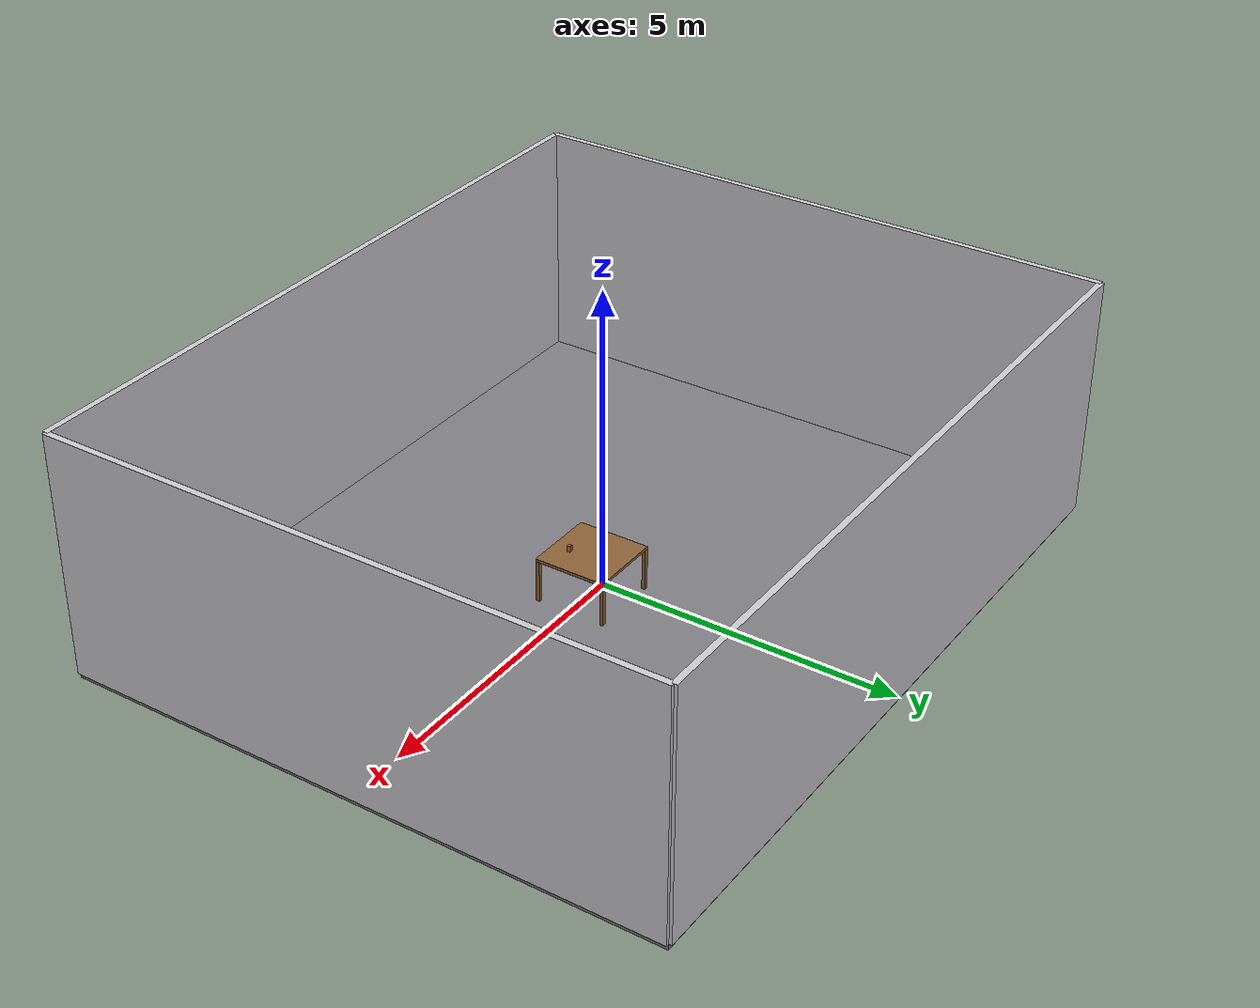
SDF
<?xml version="1.0" ?>
<sdf version="1.6">
  <world name="warehouse_box_test">
    <!-- ================= PHYSICS ================= -->
    <physics name="1ms" type="ignored">
      <max_step_size>0.001</max_step_size>
      <real_time_factor>1.0</real_time_factor>
    </physics>
    <gravity>0 0 -9.8</gravity>

    <!-- ================= SYSTEM PLUGINS ================= -->
    <plugin filename="gz-sim-physics-system"
            name="gz::sim::systems::Physics"/>
    <plugin filename="gz-sim-user-commands-system"
            name="gz::sim::systems::UserCommands"/>
    <plugin filename="gz-sim-scene-broadcaster-system"
            name="gz::sim::systems::SceneBroadcaster"/>
    <plugin filename="gz-sim-contact-system"
            name="gz::sim::systems::Contact"/>
    <plugin filename="gz-sim-sensors-system"
            name="gz::sim::systems::Sensors">
      <render_engine>ogre2</render_engine>
    </plugin>

    <!-- ================= LIGHTING ================= -->
    <light type="directional" name="sun">
      <cast_shadows>true</cast_shadows>
      <pose>0 0 10 0 0 0</pose>
      <diffuse>0.9 0.9 0.85 1</diffuse>
      <specular>0.3 0.3 0.3 1</specular>
      <attenuation>
        <range>1000</range><constant>0.9</constant>
        <linear>0.01</linear><quadratic>0.001</quadratic>
      </attenuation>
      <direction>-0.5 0.1 -0.9</direction>
    </light>
    <light type="point" name="ceiling_0">
      <pose>0 0 3.8 0 0 0</pose>
      <diffuse>0.6 0.6 0.6 1</diffuse><specular>0.1 0.1 0.1 1</specular>
      <attenuation><range>20</range><constant>0.5</constant>
        <linear>0.05</linear><quadratic>0.01</quadratic></attenuation>
      <cast_shadows>false</cast_shadows>
    </light>
    <light type="point" name="ceiling_1">
      <pose>3 3 3.8 0 0 0</pose>
      <diffuse>0.6 0.6 0.6 1</diffuse><specular>0.1 0.1 0.1 1</specular>
      <attenuation><range>20</range><constant>0.5</constant>
        <linear>0.05</linear><quadratic>0.01</quadratic></attenuation>
      <cast_shadows>false</cast_shadows>
    </light>

    <!-- ================= WAREHOUSE SHELL ================= -->
    <!-- 12 x 10 m enclosed room, 4 m tall. Arm mounts on the table at origin. -->
    <model name="warehouse">
      <static>true</static>
      <!-- Floor -->
      <link name="floor">
        <collision name="c">
          <geometry><box><size>12 10 0.1</size></box></geometry>
          <pose>0 0 -0.05 0 0 0</pose>
        </collision>
        <visual name="v">
          <geometry><box><size>12 10 0.1</size></box></geometry>
          <pose>0 0 -0.05 0 0 0</pose>
          <material>
            <ambient>0.4 0.4 0.42 1</ambient>
            <diffuse>0.5 0.5 0.52 1</diffuse>
          </material>
        </visual>
      </link>
      <!-- +X wall -->
      <link name="wall_px">
        <collision name="c"><geometry><box><size>0.1 10 4</size></box></geometry>
          <pose>6 0 2 0 0 0</pose></collision>
        <visual name="v"><geometry><box><size>0.1 10 4</size></box></geometry>
          <pose>6 0 2 0 0 0</pose>
          <material><ambient>0.7 0.7 0.72 1</ambient><diffuse>0.8 0.8 0.82 1</diffuse></material></visual>
      </link>
      <!-- -X wall -->
      <link name="wall_nx">
        <collision name="c"><geometry><box><size>0.1 10 4</size></box></geometry>
          <pose>-6 0 2 0 0 0</pose></collision>
        <visual name="v"><geometry><box><size>0.1 10 4</size></box></geometry>
          <pose>-6 0 2 0 0 0</pose>
          <material><ambient>0.7 0.7 0.72 1</ambient><diffuse>0.8 0.8 0.82 1</diffuse></material></visual>
      </link>
      <!-- +Y wall -->
      <link name="wall_py">
        <collision name="c"><geometry><box><size>12 0.1 4</size></box></geometry>
          <pose>0 5 2 0 0 0</pose></collision>
        <visual name="v"><geometry><box><size>12 0.1 4</size></box></geometry>
          <pose>0 5 2 0 0 0</pose>
          <material><ambient>0.7 0.7 0.72 1</ambient><diffuse>0.8 0.8 0.82 1</diffuse></material></visual>
      </link>
      <!-- -Y wall -->
      <link name="wall_ny">
        <collision name="c"><geometry><box><size>12 0.1 4</size></box></geometry>
          <pose>0 -5 2 0 0 0</pose></collision>
        <visual name="v"><geometry><box><size>12 0.1 4</size></box></geometry>
          <pose>0 -5 2 0 0 0</pose>
          <material><ambient>0.7 0.7 0.72 1</ambient><diffuse>0.8 0.8 0.82 1</diffuse></material></visual>
      </link>
    </model>

    <!-- ================= TABLE ================= -->
    <model name="table">
      <static>true</static>
      <link name="top">
        <collision name="c">
          <geometry><box><size>1.2000 1.2000 0.0500</size></box></geometry>
          <pose>0.3000 0.0000 0.7250 0 0 0</pose>
        </collision>
        <visual name="v">
          <geometry><box><size>1.2000 1.2000 0.0500</size></box></geometry>
          <pose>0.3000 0.0000 0.7250 0 0 0</pose>
          <material>
            <ambient>0.55 0.38 0.22 1</ambient>
            <diffuse>0.55 0.38 0.22 1</diffuse>
          </material>
        </visual>
      </link>
      <link name="leg_0">
        <collision name="c">
          <geometry><box><size>0.0600 0.0600 0.7000</size></box></geometry>
          <pose>-0.2700 -0.5700 0.3500 0 0 0</pose>
        </collision>
        <visual name="v">
          <geometry><box><size>0.0600 0.0600 0.7000</size></box></geometry>
          <pose>-0.2700 -0.5700 0.3500 0 0 0</pose>
          <material>
            <ambient>0.55 0.38 0.22 1</ambient>
            <diffuse>0.55 0.38 0.22 1</diffuse>
          </material>
        </visual>
      </link>
      <link name="leg_1">
        <collision name="c">
          <geometry><box><size>0.0600 0.0600 0.7000</size></box></geometry>
          <pose>-0.2700 0.5700 0.3500 0 0 0</pose>
        </collision>
        <visual name="v">
          <geometry><box><size>0.0600 0.0600 0.7000</size></box></geometry>
          <pose>-0.2700 0.5700 0.3500 0 0 0</pose>
          <material>
            <ambient>0.55 0.38 0.22 1</ambient>
            <diffuse>0.55 0.38 0.22 1</diffuse>
          </material>
        </visual>
      </link>
      <link name="leg_2">
        <collision name="c">
          <geometry><box><size>0.0600 0.0600 0.7000</size></box></geometry>
          <pose>0.8700 -0.5700 0.3500 0 0 0</pose>
        </collision>
        <visual name="v">
          <geometry><box><size>0.0600 0.0600 0.7000</size></box></geometry>
          <pose>0.8700 -0.5700 0.3500 0 0 0</pose>
          <material>
            <ambient>0.55 0.38 0.22 1</ambient>
            <diffuse>0.55 0.38 0.22 1</diffuse>
          </material>
        </visual>
      </link>
      <link name="leg_3">
        <collision name="c">
          <geometry><box><size>0.0600 0.0600 0.7000</size></box></geometry>
          <pose>0.8700 0.5700 0.3500 0 0 0</pose>
        </collision>
        <visual name="v">
          <geometry><box><size>0.0600 0.0600 0.7000</size></box></geometry>
          <pose>0.8700 0.5700 0.3500 0 0 0</pose>
          <material>
            <ambient>0.55 0.38 0.22 1</ambient>
            <diffuse>0.55 0.38 0.22 1</diffuse>
          </material>
        </visual>
      </link>
    </model>

    <!-- ================= BOX ================= -->
    <model name="box">
      <pose>0.450 -0.300 0.800 0 0 0</pose>
      <link name="link">
        <inertial>
          <mass>0.15</mass>
          <inertia>
            <ixx>0.00018625</ixx><ixy>0</ixy><ixz>0</ixz>
            <iyy>0.00015625</iyy><iyz>0</iyz>
            <izz>0.00009250</izz>
          </inertia>
        </inertial>
        <collision name="collision">
          <geometry>
            <box><size>0.050 0.070 0.100</size></box>
          </geometry>
        </collision>
        <visual name="visual">
          <geometry>
            <box><size>0.050 0.070 0.100</size></box>
          </geometry>
          <material>
            <ambient>0.85 0.35 0.12 1</ambient>
            <diffuse>0.85 0.35 0.12 1</diffuse>
            <specular>0.1 0.1 0.1 1</specular>
          </material>
        </visual>
      </link>
    </model>
  </world>
</sdf>
